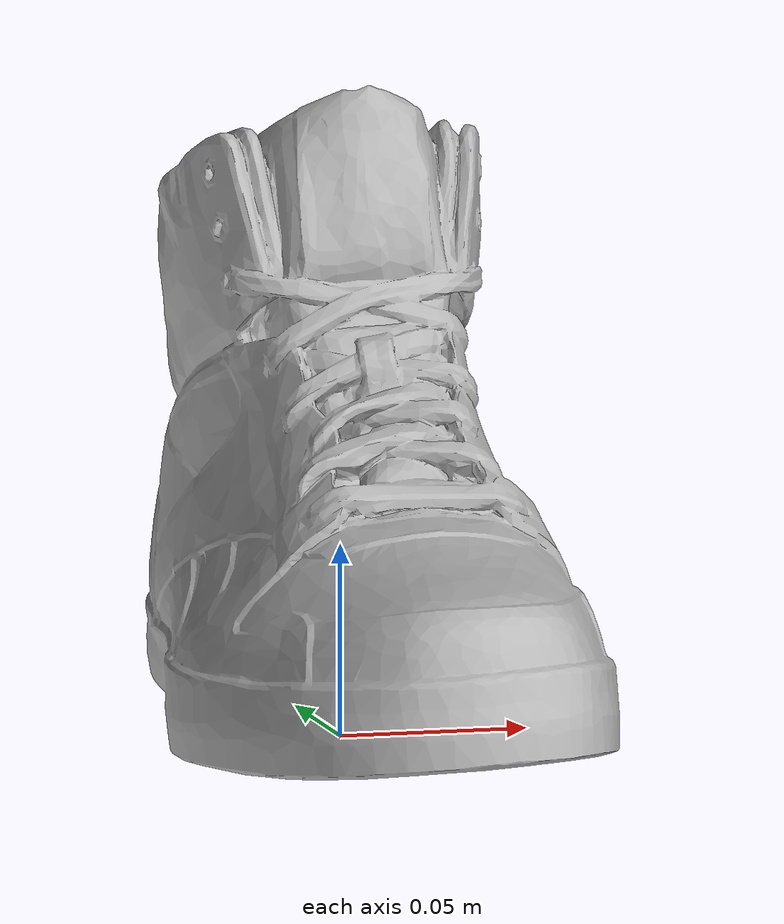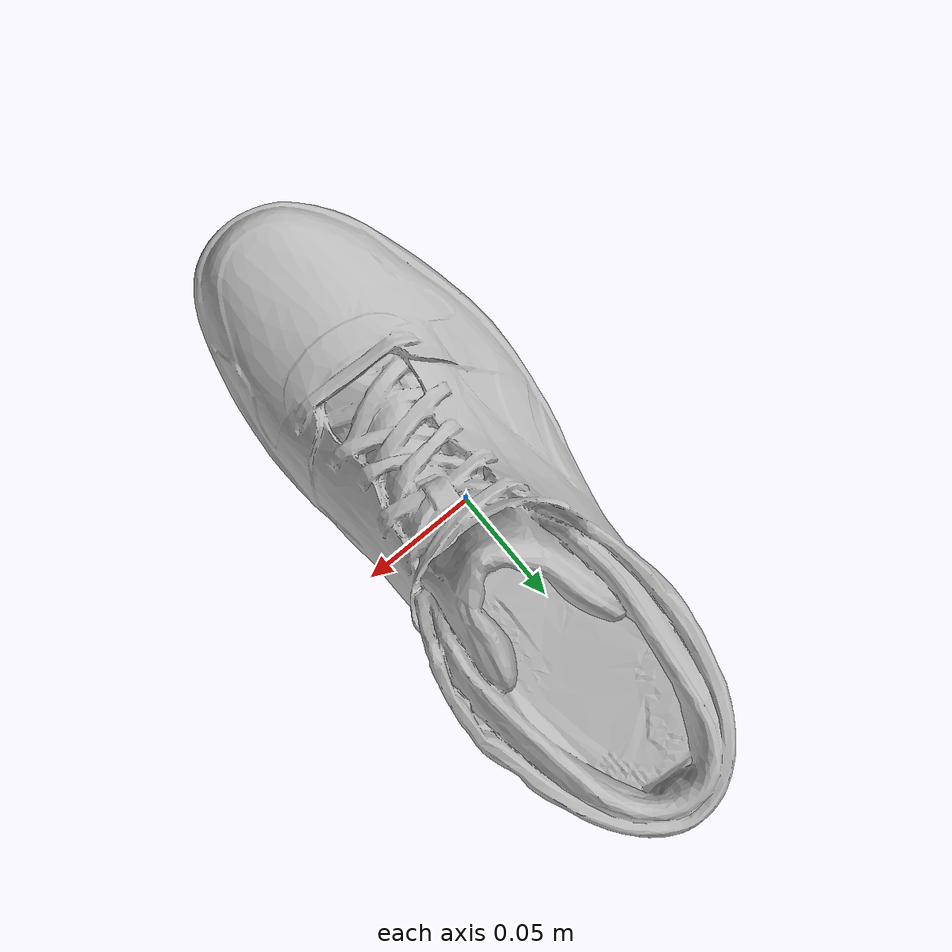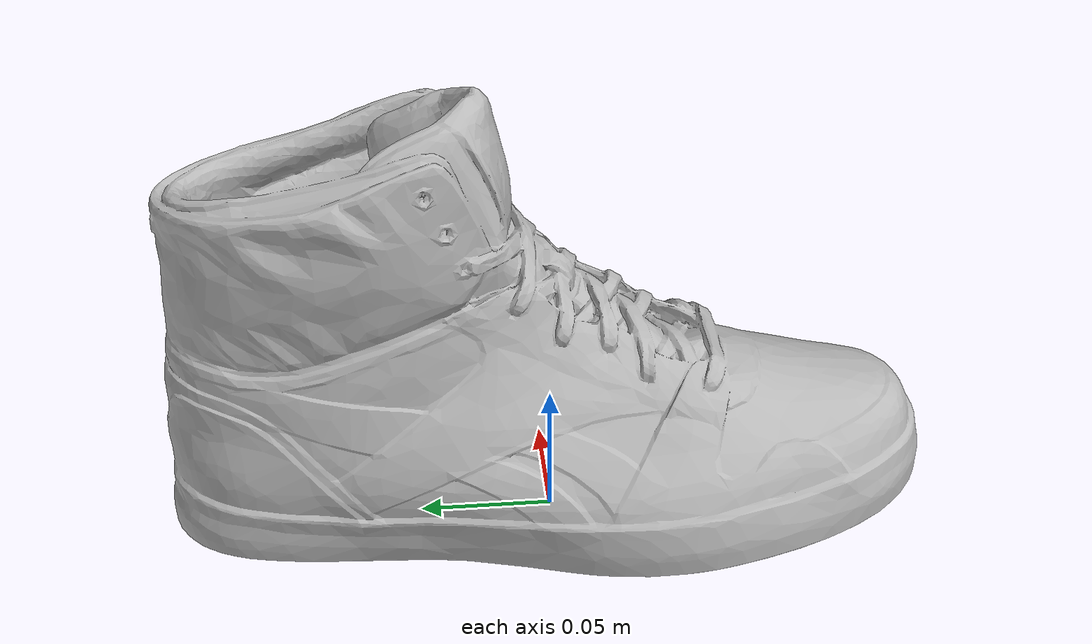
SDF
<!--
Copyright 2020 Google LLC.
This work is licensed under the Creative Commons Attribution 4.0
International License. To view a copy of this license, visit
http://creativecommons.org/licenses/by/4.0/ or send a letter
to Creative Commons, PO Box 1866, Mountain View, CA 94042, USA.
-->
<?xml version="1.0" ?>
<sdf version="1.6">
  <model name="Reebok_SL_FLIP_UPDATE">
    <link name="link_0">
      <visual name="visual">
        <geometry>
          <mesh>
            <uri>meshes/model.obj</uri>
          </mesh>
        </geometry>
      </visual>
      <collision name="collision_0">
        <geometry>
          <mesh>
            <uri>meshes/model.obj</uri>
          </mesh>
        </geometry>
      </collision>
    </link>
  </model>
</sdf>
